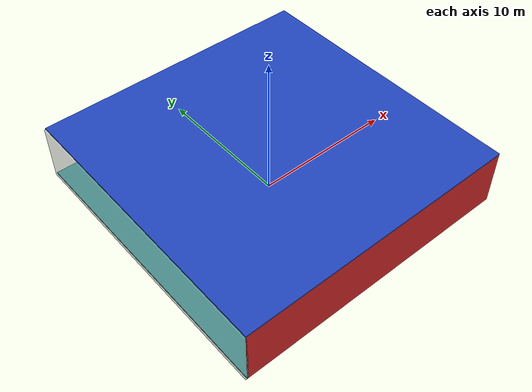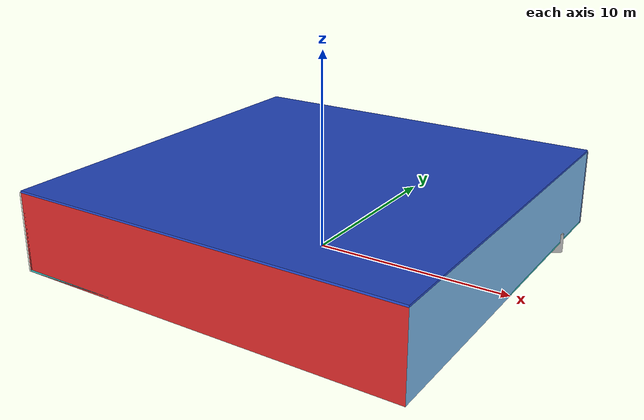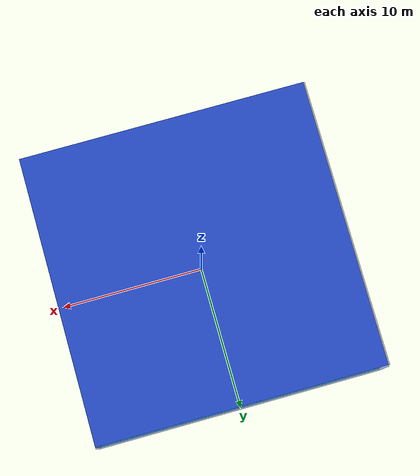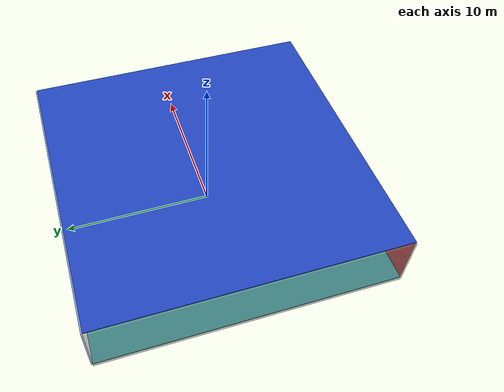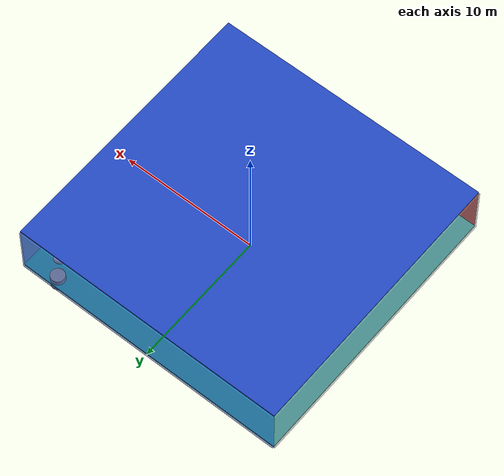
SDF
<sdf version="1.4">
 <world name="default">
  <physics type="ode">
   <max_step_size>0.001</max_step_size>
   <real_time_factor>1</real_time_factor>
   <real_time_update_rate>1000</real_time_update_rate>
   <gravity>0 0 -9.8</gravity>
  </physics>
  <scene><ambient>0.4 0.4 0.4 1</ambient><background>0.7 0.7 0.7 1</background><shadows>1</shadows></scene>
  <model name="Surrounding">
   <static>1</static>
   <link name="Ceiling">
    <collision name="Ceiling_Collision"><geometry><box><size>20 20 0.1</size></box></geometry></collision>
    <visual name="Ceiling_Visual">
     <geometry><box><size>20 20 0.1</size></box></geometry>
     <material>
      <script><uri>file://media/materials/scripts/gazebo.material</uri><name>Gazebo/Blue</name></script>
     </material>
    </visual>
    <pose>0 0 4.05 0 0 0</pose>
   </link>
   <link name="Wall_South">
    <collision name="Wall_South_Collision">
     <geometry><box><size>20 0 4</size></box></geometry>
     <pose>0 0 2 0 -0 0</pose>
    </collision>
    <visual name="Wall_South_Visual">
     <pose>0 0 2 0 -0 0</pose>
     <geometry><box><size>20 0 4</size></box></geometry>
     <material>
      <script><uri>file://media/materials/scripts/gazebo.material</uri><name>Gazebo/RedGlow</name></script>
     </material>
    </visual>
    <velocity_decay><linear>0</linear><angular>0</angular></velocity_decay>
    <pose>0 -10 0 0 -0 0</pose>
   </link>
   <link name="Wall_East">
    <collision name="Wall_21_Collision">
     <geometry><box><size>20 0 4</size></box></geometry>
     <pose>0 0 2 0 -0 0</pose>
    </collision>
    <visual name="Wall_21_Visual">
     <pose>0 0 2 0 -0 0</pose>
     <geometry><box><size>20 0 4</size></box></geometry>
     <material>
      <script><uri>file://media/materials/scripts/gazebo.material</uri><name>Gazebo/SkyBlue</name></script>
     </material>
    </visual>
    <velocity_decay><linear>0</linear><angular>0</angular></velocity_decay>
    <pose>10 0 0 0 -0 1.5708</pose>
   </link>
   <link name="Wall_North">
    <collision name="Wall_22_Collision">
     <geometry><box><size>20 0.2 4</size></box></geometry>
     <pose>0 0 2 0 -0 0</pose>
    </collision>
    <visual name="Wall_22_Visual">
     <pose>0 0 2 0 -0 0</pose>
     <geometry><box><size>20 0.2 4</size></box></geometry>
     <material>
      <script><uri>file://media/materials/scripts/gazebo.material</uri><name>Gazebo/BlueTransparent</name></script>
     </material>
    </visual>
    <velocity_decay><linear>0</linear><angular>0</angular></velocity_decay>
    <pose>0 10 0 0 -0 0</pose>
   </link>
   <link name="Wall_West">
    <collision name="Wall_23_Collision">
     <geometry><box><size>20 0.2 4</size></box></geometry>
     <pose>0 0 2 0 -0 0</pose>
    </collision>
    <visual name="Wall_23_Visual">
     <pose>0 0 2 0 -0 0</pose>
     <geometry><box><size>20 0.2 4</size></box></geometry>
     <material>
      <script><uri>file://media/materials/scripts/gazebo.material</uri><name>Gazebo/GreyTransparent</name></script>
     </material>
    </visual>
    <velocity_decay><linear>0</linear><angular>0</angular></velocity_decay>
    <pose>-10 0 0 0 0 -1.5708</pose>
   </link>
   <link name="Ground_link">
    <collision name="collision">
     <pose>0 0 .05 0 -0 0</pose>
     <geometry><box><size>20 20 0.1</size></box></geometry>
    </collision>
    <visual name="visual">
     <pose>0 0 .05 0 -0 0</pose>
     <geometry><box><size>20 20 0.1</size></box></geometry>
     <material>
      <script><uri>file://media/materials/scripts/gazebo.material</uri><name>Gazebo/Turquoise</name></script>
     </material>
    </visual>
   </link>
   <static>1</static>
  </model>
  <spherical_coordinates>
   <surface_model>EARTH_WGS84</surface_model>
   <latitude_deg>0</latitude_deg>
   <longitude_deg>0</longitude_deg>
   <elevation>0</elevation>
   <heading_deg>0</heading_deg>
  </spherical_coordinates>
  <light name="lightball_0" type="diffuse">
   <diffuse>0.8 0.8 0.8 1</diffuse>
   <specular>0.2 0.2 0.2 1</specular>
   <attenuation>
    <range>100</range>
    <constant>0.7</constant>
    <linear>0.01</linear>
    <quadratic>0.001</quadratic>
   </attenuation>
   <direction>-0.5 0.1 -0.9</direction>
   <pose>-3.50984873351 5.9815081165 1.87217818711 0 0 0</pose>
  </light>
  <light name="lightball_1" type="diffuse">
   <diffuse>0.8 0.8 0.8 1</diffuse>
   <specular>0.2 0.2 0.2 1</specular>
   <attenuation>
    <range>100</range>
    <constant>0.7</constant>
    <linear>0.01</linear>
    <quadratic>0.001</quadratic>
   </attenuation>
   <direction>-0.5 0.1 -0.9</direction>
   <pose>7.47127629429 -2.30339501608 0.646699058611 0 0 0</pose>
  </light>
  <light name="lightball_2" type="diffuse">
   <diffuse>0.8 0.8 0.8 1</diffuse>
   <specular>0.2 0.2 0.2 1</specular>
   <attenuation>
    <range>100</range>
    <constant>0.7</constant>
    <linear>0.01</linear>
    <quadratic>0.001</quadratic>
   </attenuation>
   <direction>-0.5 0.1 -0.9</direction>
   <pose>-6.88553441964 -1.55723896916 2.99873501222 0 0 0</pose>
  </light>
  <light name="lightball_3" type="diffuse">
   <diffuse>0.8 0.8 0.8 1</diffuse>
   <specular>0.2 0.2 0.2 1</specular>
   <attenuation>
    <range>100</range>
    <constant>0.7</constant>
    <linear>0.01</linear>
    <quadratic>0.001</quadratic>
   </attenuation>
   <direction>-0.5 0.1 -0.9</direction>
   <pose>2.1160454349 0.587599592054 3.25503203405 0 0 0</pose>
  </light>
  <light name="lightball_4" type="diffuse">
   <diffuse>0.8 0.8 0.8 1</diffuse>
   <specular>0.2 0.2 0.2 1</specular>
   <attenuation>
    <range>100</range>
    <constant>0.7</constant>
    <linear>0.01</linear>
    <quadratic>0.001</quadratic>
   </attenuation>
   <direction>-0.5 0.1 -0.9</direction>
   <pose>-9.84521177359 3.46410986688 2.58340087453 0 0 0</pose>
  </light>
  <light name="lightball_5" type="diffuse">
   <diffuse>0.8 0.8 0.8 1</diffuse>
   <specular>0.2 0.2 0.2 1</specular>
   <attenuation>
    <range>100</range>
    <constant>0.7</constant>
    <linear>0.01</linear>
    <quadratic>0.001</quadratic>
   </attenuation>
   <direction>-0.5 0.1 -0.9</direction>
   <pose>-7.36467880928 -2.96268522559 1.36677090318 0 0 0</pose>
  </light>
  <light name="lightball_6" type="diffuse">
   <diffuse>0.8 0.8 0.8 1</diffuse>
   <specular>0.2 0.2 0.2 1</specular>
   <attenuation>
    <range>100</range>
    <constant>0.7</constant>
    <linear>0.01</linear>
    <quadratic>0.001</quadratic>
   </attenuation>
   <direction>-0.5 0.1 -0.9</direction>
   <pose>3.0588928197 -0.0166439249243 1.20680595324 0 0 0</pose>
  </light>
  <light name="lightball_7" type="diffuse">
   <diffuse>0.8 0.8 0.8 1</diffuse>
   <specular>0.2 0.2 0.2 1</specular>
   <attenuation>
    <range>100</range>
    <constant>0.7</constant>
    <linear>0.01</linear>
    <quadratic>0.001</quadratic>
   </attenuation>
   <direction>-0.5 0.1 -0.9</direction>
   <pose>6.37090763357 -8.33566942325 3.57406669175 0 0 0</pose>
  </light>
  <light name="lightball_8" type="diffuse">
   <diffuse>0.8 0.8 0.8 1</diffuse>
   <specular>0.2 0.2 0.2 1</specular>
   <attenuation>
    <range>100</range>
    <constant>0.7</constant>
    <linear>0.01</linear>
    <quadratic>0.001</quadratic>
   </attenuation>
   <direction>-0.5 0.1 -0.9</direction>
   <pose>5.09254944992 -3.22201126378 2.90223607141 0 0 0</pose>
  </light>
  <light name="lightball_9" type="diffuse">
   <diffuse>0.8 0.8 0.8 1</diffuse>
   <specular>0.2 0.2 0.2 1</specular>
   <attenuation>
    <range>100</range>
    <constant>0.7</constant>
    <linear>0.01</linear>
    <quadratic>0.001</quadratic>
   </attenuation>
   <direction>-0.5 0.1 -0.9</direction>
   <pose>2.73888949936 6.9648680571 3.81561121979 0 0 0</pose>
  </light>
  <include>
   <uri>model://construction_cone</uri>
   <pose>-4.0235327358 4.1159604517 0 0 0 2.1207340319</pose>
  </include>
  <include>
   <uri>model://textured_shapes</uri>
   <pose>-2.37153851495 -6.57256864817 0 0 0 2.1062845932</pose>
  </include>
  <include><uri>model://cabinet</uri><pose>4.52607065506 4.38993844891 0 0 0 2.2867317352</pose></include>
  <include>
   <uri>model://textured_shapes</uri>
   <pose>8.56955409081 8.21001353547 0 0 0 0.610885434385</pose>
  </include>
 </world>
</sdf>

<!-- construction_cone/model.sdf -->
<sdf version="1.5">
  <model name="Construction Cone">
    <link name="link">
      <collision name="collision">
        <geometry>
          <mesh>
            <scale>10 10 10</scale>
            <uri>file://isr-testbed/construction_cone/meshes/construction_cone.dae</uri>
          </mesh>
        </geometry>
      </collision>
      <visual name="visual">
        <geometry>
          <mesh>
            <scale>10 10 10</scale>
            <uri>file://isr-testbed/construction_cone/meshes/construction_cone.dae</uri>
          </mesh>
        </geometry>
      </visual>
    </link>
  </model>
</sdf>

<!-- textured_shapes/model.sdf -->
<sdf version="1.6">
  <model name="textured_shapes">
    <pose>0 0 0.5 0 0 0</pose>
    <link name="box">
      <pose>0 -1.5 0 0 0 0</pose>
      <collision name="collision">
        <geometry>
          <box>
            <size>1 1 1</size>
          </box>
        </geometry>
      </collision>
      <visual name="visual">
        <geometry>
          <box>
            <size>1 1 1</size>
          </box>
        </geometry>
        <material>
          <script>
            <uri>model://../model_source/models/textured_shapes/materials/scripts</uri>
            <uri>model://../model_source/models/textured_shapes/materials/textures</uri>
            <name>TexturedShape/Squares</name>
          </script>
        </material>
      </visual>
    </link>
    <link name="sphere">
      <collision name="collision">
        <geometry>
          <sphere>
            <radius>0.5</radius>
          </sphere>
        </geometry>
      </collision>
      <visual name="visual">
        <geometry>
          <sphere>
            <radius>0.5</radius>
          </sphere>
        </geometry>
        <material>
          <script>
            <uri>model://../model_source/models/textured_shapes/materials/scripts</uri>
            <uri>model://../model_source/models/textured_shapes/materials/textures</uri>
            <name>TexturedShape/Squares</name>
          </script>
        </material>
      </visual>
    </link>
    <link name="cylinder">
      <pose>0 1.5 0 0 0 0</pose>
      <collision name="collision">
        <geometry>
          <cylinder>
            <radius>0.5</radius>
            <length>1</length>
          </cylinder>
        </geometry>
      </collision>
      <visual name="visual">
        <geometry>
          <cylinder>
            <radius>0.5</radius>
            <length>1</length>
          </cylinder>
        </geometry>
        <material>
          <script>
            <uri>model://../model_source/models/textured_shapes/materials/scripts</uri>
            <uri>model://../model_source/models/textured_shapes/materials/textures</uri>
            <name>TexturedShape/Squares</name>
          </script>
        </material>
      </visual>
    </link>
  </model>
</sdf>

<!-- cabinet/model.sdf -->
<sdf version="1.5">
  <model name="cabinet">
    <static>true</static>
    <link name="cabinet_bottom_plate">
      <inertial>
        <pose>0 0 -1 0 0 0</pose>
        <inertia>
          <ixx>2.050000</ixx>
          <ixy>0</ixy>
          <ixz>0</ixz>
          <iyy>2.050000</iyy>
          <iyz>0</iyz>
          <izz>2.050000</izz>
        </inertia>
        <mass>25.000000</mass>
      </inertial>
      <collision name="cabinet_bottom_plate_geom">
        <pose>0 0 0.010000 0 0 0</pose>
        <geometry>
          <box>
            <size>0.450000 0.450000 0.020000</size>
          </box>
        </geometry>
      </collision>
      <visual name="cabinet_bottom_plate_geom_visual">
        <pose>0 0 0.010000 0 0 0</pose>
        <geometry>
          <box>
            <size>0.450000 0.450000 0.020000</size>
          </box>
        </geometry>
        <material>
          <script>
            <uri>model://media/materials/scripts/gazebo.material</uri>
            <name>Gazebo/Wood</name>
          </script>
        </material>
      </visual>
      <collision name="cabinet_bottom_plate_geom_cabinet_back_plate">
        <pose>0.235000 0 0.510000 0 0 0</pose>
        <geometry>
          <box>
            <size>0.020000 0.450000 1.020000</size>
          </box>
        </geometry>
      </collision>
      <visual name="cabinet_bottom_plate_geom_cabinet_back_plate_visual">
        <pose>0.235000 0 0.510000 0 0 0</pose>
        <geometry>
          <box>
            <size>0.020000 0.450000 1.020000</size>
          </box>
        </geometry>
        <material>
          <script>
            <uri>model://media/materials/scripts/gazebo.material</uri>
            <name>Gazebo/Wood</name>
          </script>
        </material>
      </visual>
      <collision name="cabinet_bottom_plate_geom_cabinet_left_plate">
        <pose>0 0.235000 0.510000 0 0 0</pose>
        <geometry>
          <box>
            <size>0.450000 0.020000 1.020000</size>
          </box>
        </geometry>
      </collision>
      <visual name="cabinet_bottom_plate_geom_cabinet_left_plate_visual">
        <pose>0 0.235000 0.510000 0 0 0</pose>
        <geometry>
          <box>
            <size>0.450000 0.020000 1.020000</size>
          </box>
        </geometry>
        <material>
          <script>
            <uri>model://media/materials/scripts/gazebo.material</uri>
            <name>Gazebo/Wood</name>
          </script>
        </material>
      </visual>
      <collision name="cabinet_bottom_plate_geom_cabinet_middle_plate">
        <pose>0 0 0.510000 0 0 0</pose>
        <geometry>
          <box>
            <size>0.450000 0.450000 0.020000</size>
          </box>
        </geometry>
      </collision>
      <visual name="cabinet_bottom_plate_geom_cabinet_middle_plate_visual">
        <pose>0 0 0.510000 0 0 0</pose>
        <geometry>
          <box>
            <size>0.450000 0.450000 0.020000</size>
          </box>
        </geometry>
        <material>
          <script>
            <uri>model://media/materials/scripts/gazebo.material</uri>
            <name>Gazebo/Wood</name>
          </script>
        </material>
      </visual>
      <collision name="cabinet_bottom_plate_geom_cabinet_right_plate">
        <pose>0 -0.235000 0.510000 0 0 0</pose>
        <geometry>
          <box>
            <size>0.450000 0.020000 1.020000</size>
          </box>
        </geometry>
      </collision>
      <visual name="cabinet_bottom_plate_geom_cabinet_right_plate_visual">
        <pose>0 -0.235000 0.510000 0 0 0</pose>
        <geometry>
          <box>
            <size>0.450000 0.020000 1.020000</size>
          </box>
        </geometry>
        <material>
          <script>
            <uri>model://media/materials/scripts/gazebo.material</uri>
            <name>Gazebo/Wood</name>
          </script>
        </material>
      </visual>
      <collision name="cabinet_bottom_plate_geom_cabinet_top_plate">
        <pose>0 0 1.010000 0 0 0</pose>
        <geometry>
          <box>
            <size>0.450000 0.450000 0.020000</size>
          </box>
        </geometry>
      </collision>
      <visual name="cabinet_bottom_plate_geom_cabinet_top_plate_visual">
        <pose>0 0 1.010000 0 0 0</pose>
        <geometry>
          <box>
            <size>0.450000 0.450000 0.020000</size>
          </box>
        </geometry>
        <material>
          <script>
            <uri>model://media/materials/scripts/gazebo.material</uri>
            <name>Gazebo/Wood</name>
          </script>
        </material>
      </visual>
    </link>
  </model>
</sdf>
